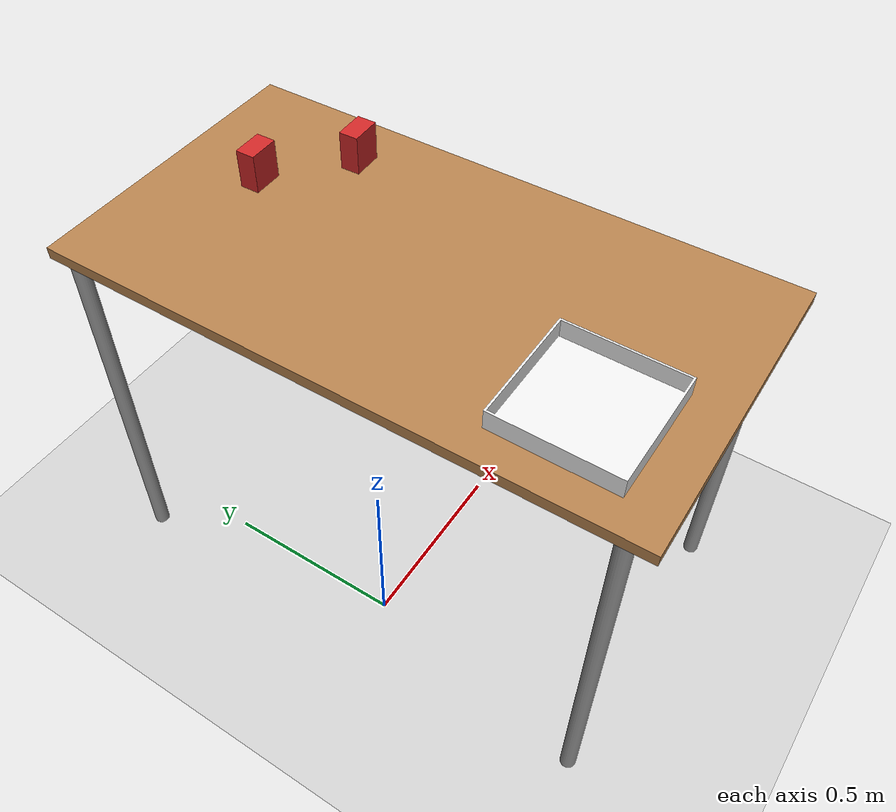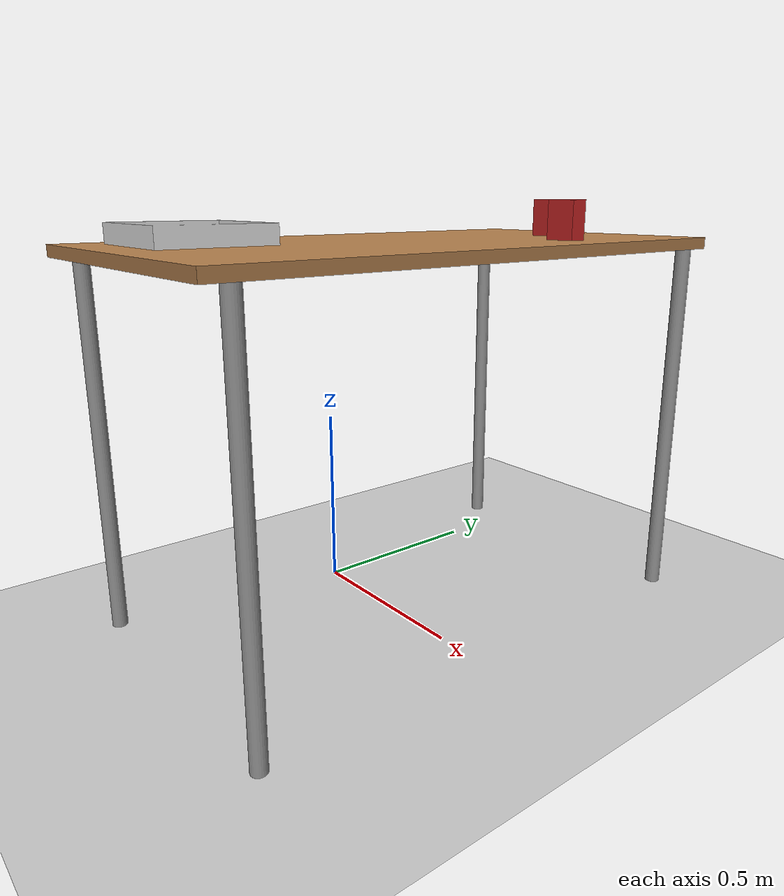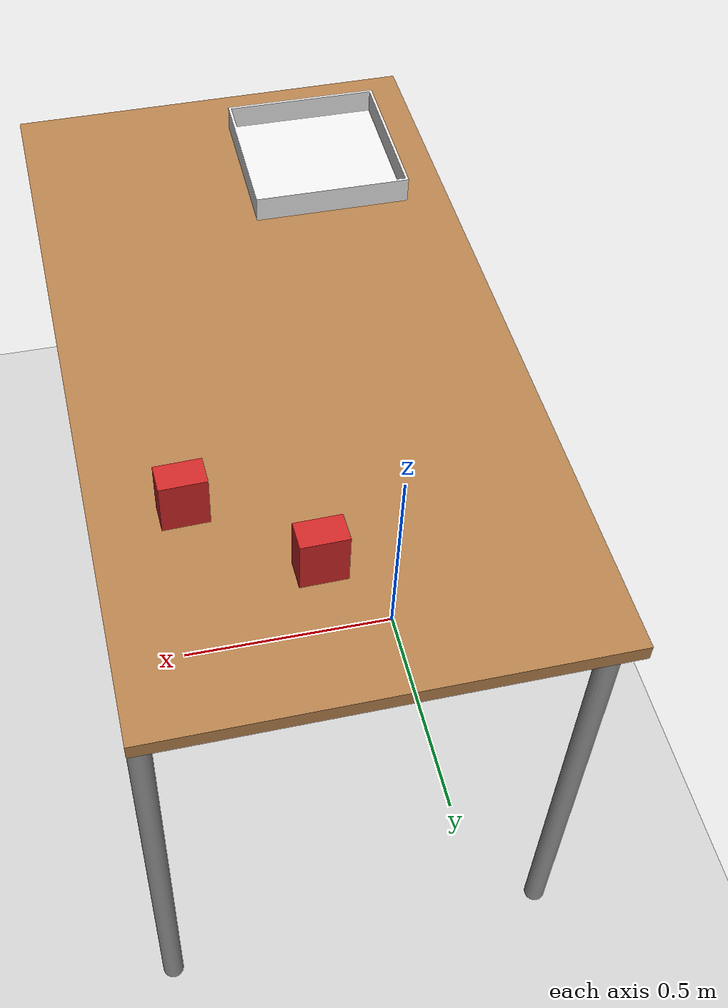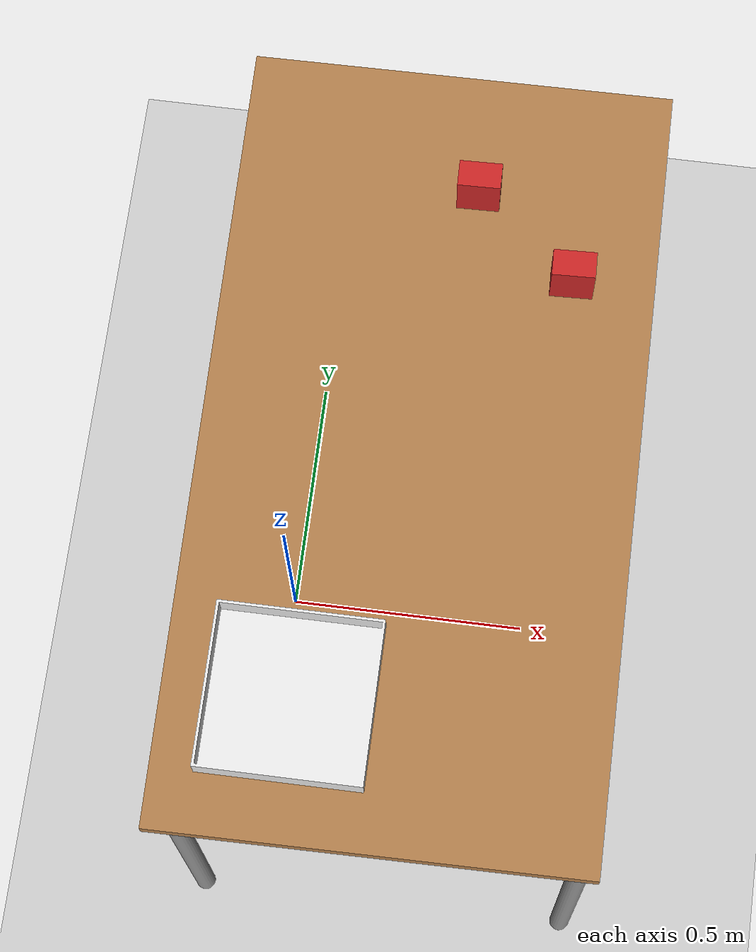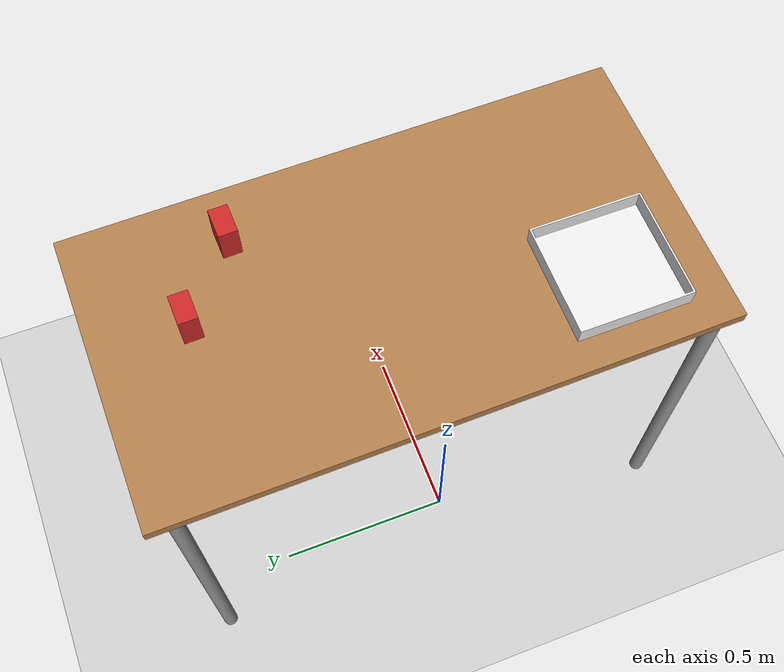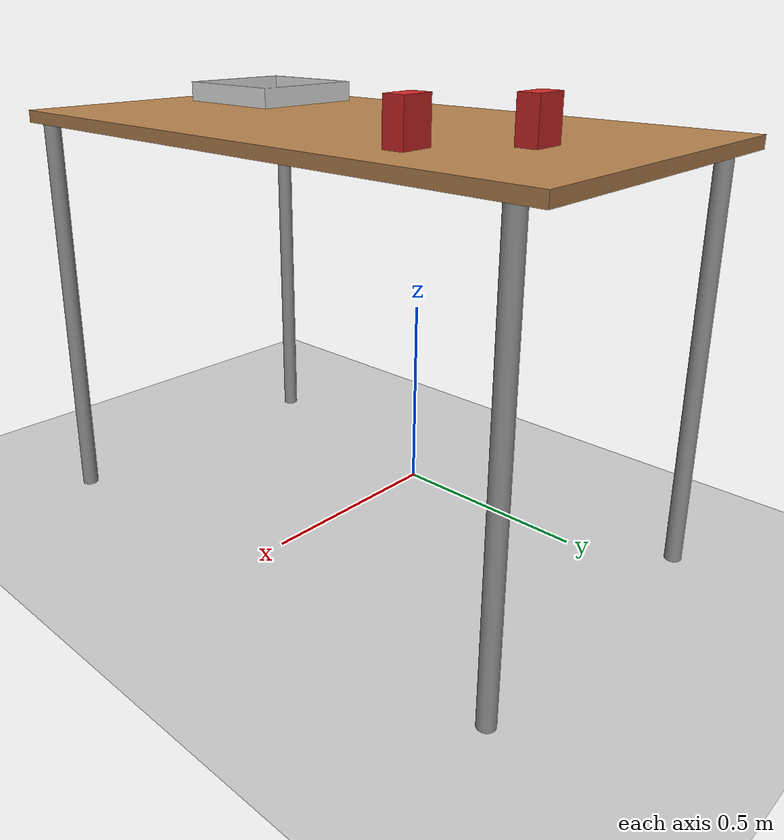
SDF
<sdf version="1.6">
 <world name="default">
  <light name="sun" type="directional">
   <cast_shadows>0</cast_shadows>
   <pose>0 0 10 0 -0 0</pose>
   <diffuse>0.8 0.8 0.8 1</diffuse>
   <specular>0.2 0.2 0.2 1</specular>
   <attenuation>
    <range>1000</range>
    <constant>0.9</constant>
    <linear>0.01</linear>
    <quadratic>0.001</quadratic>
   </attenuation>
   <direction>-0.5 0.1 -0.9</direction>
  </light>
  <model name="ground_plane">
   <static>1</static>
   <link name="link">
    <collision name="collision">
     <geometry><plane><normal>0 0 1</normal><size>100 100</size></plane></geometry>
     <surface>
      <contact><collide_bitmask>65535</collide_bitmask></contact>
      <friction><ode><mu>100</mu><mu2>50</mu2></ode></friction>
     </surface>
    </collision>
    <visual name="visual">
     <cast_shadows>0</cast_shadows>
     <geometry><plane><normal>0 0 1</normal><size>100 100</size></plane></geometry>
     <material>
      <script><uri>file://media/materials/scripts/gazebo.material</uri><name>Gazebo/Grey</name></script>
     </material>
    </visual>
   </link>
  </model>
  <gravity>0 0 -9.8</gravity>
  <magnetic_field>6e-06 2.3e-05 -4.2e-05</magnetic_field>
  <atmosphere type="adiabatic"/>
  <physics name="default_physics" default="0" type="ode">
   <max_step_size>0.001</max_step_size>
   <real_time_factor>1</real_time_factor>
   <real_time_update_rate>1000</real_time_update_rate>
  </physics>
  <scene><ambient>0.4 0.4 0.4 1</ambient><background>0.7 0.7 0.7 1</background><shadows>0</shadows></scene>
  <spherical_coordinates>
   <surface_model>EARTH_WGS84</surface_model>
   <latitude_deg>0</latitude_deg>
   <longitude_deg>0</longitude_deg>
   <elevation>0</elevation>
   <heading_deg>0</heading_deg>
  </spherical_coordinates>
  <model name="table1">
   <link name="link">
    <pose>-0.120516 -0.001132 0 0 0 -1.5614</pose>
    <visual name="visual1">
     <pose>0 0 1 0 -0 0</pose>
     <geometry><box><size>1.5 0.8 0.03</size></box></geometry>
     <material>
      <script><uri>file://media/materials/scripts/gazebo.material</uri><name>Gazebo/Wood</name></script>
      <shader type="pixel"/>
     </material>
     <cast_shadows>0</cast_shadows>
    </visual>
    <visual name="back_left_leg">
     <pose>-0.68 0.38 0.5 0 -0 0</pose>
     <geometry><cylinder><radius>0.02</radius><length>1</length></cylinder></geometry>
     <material>
      <script><uri>file://media/materials/scripts/gazebo.material</uri><name>Gazebo/Grey</name></script>
      <shader type="pixel"/>
     </material>
     <cast_shadows>0</cast_shadows>
    </visual>
    <visual name="front_right_leg">
     <pose>0.68 -0.38 0.5 0 -0 0</pose>
     <geometry><cylinder><radius>0.02</radius><length>1</length></cylinder></geometry>
     <material>
      <script><uri>file://media/materials/scripts/gazebo.material</uri><name>Gazebo/Grey</name></script>
      <shader type="pixel"/>
     </material>
     <cast_shadows>0</cast_shadows>
    </visual>
    <visual name="back_right_leg">
     <pose>-0.68 -0.38 0.5 0 -0 0</pose>
     <geometry><cylinder><radius>0.02</radius><length>1</length></cylinder></geometry>
     <material>
      <script><uri>file://media/materials/scripts/gazebo.material</uri><name>Gazebo/Grey</name></script>
      <shader type="pixel"/>
     </material>
     <cast_shadows>0</cast_shadows>
    </visual>
    <visual name="front_left_leg">
     <pose>0.68 0.38 0.5 0 -0 0</pose>
     <geometry><cylinder><radius>0.02</radius><length>1</length></cylinder></geometry>
     <material>
      <script><uri>file://media/materials/scripts/gazebo.material</uri><name>Gazebo/Grey</name></script>
      <shader type="pixel"/>
     </material>
     <cast_shadows>0</cast_shadows>
    </visual>
    <collision name="surface">
     <pose>0 0 1 0 -0 0</pose>
     <geometry><box><size>1.5 0.8 0.03</size></box></geometry>
     <surface>
      <friction>
       <ode><mu>0.6</mu><mu2>0.6</mu2><fdir1>0 0 0</fdir1><slip1>0</slip1><slip2>0</slip2></ode>
       <torsional>
        <coefficient>1</coefficient>
        <patch_radius>0</patch_radius>
        <surface_radius>0</surface_radius>
        <use_patch_radius>1</use_patch_radius>
        <ode><slip>0</slip></ode>
       </torsional>
      </friction>
      <bounce><restitution_coefficient>0</restitution_coefficient><threshold>1e+06</threshold></bounce>
      <contact>
       <collide_without_contact>0</collide_without_contact>
       <collide_without_contact_bitmask>1</collide_without_contact_bitmask>
       <collide_bitmask>1</collide_bitmask>
       <ode>
        <soft_cfm>0</soft_cfm>
        <soft_erp>0.2</soft_erp>
        <kp>1e+13</kp>
        <kd>1</kd>
        <max_vel>0.01</max_vel>
        <min_depth>0</min_depth>
       </ode>
       <bullet>
        <split_impulse>1</split_impulse>
        <split_impulse_penetration_threshold>-0.01</split_impulse_penetration_threshold>
        <soft_cfm>0</soft_cfm>
        <soft_erp>0.2</soft_erp>
        <kp>1e+13</kp>
        <kd>1</kd>
       </bullet>
      </contact>
     </surface>
    </collision>
    <collision name="front_left_leg">
     <pose>0.68 0.38 0.5 0 -0 0</pose>
     <geometry><cylinder><radius>0.02</radius><length>1</length></cylinder></geometry>
     <surface>
      <friction>
       <ode><mu>1</mu><mu2>1</mu2><fdir1>0 0 0</fdir1><slip1>0</slip1><slip2>0</slip2></ode>
       <torsional>
        <coefficient>1</coefficient>
        <patch_radius>0</patch_radius>
        <surface_radius>0</surface_radius>
        <use_patch_radius>1</use_patch_radius>
        <ode><slip>0</slip></ode>
       </torsional>
      </friction>
      <bounce><restitution_coefficient>0</restitution_coefficient><threshold>1e+06</threshold></bounce>
      <contact>
       <collide_without_contact>0</collide_without_contact>
       <collide_without_contact_bitmask>1</collide_without_contact_bitmask>
       <collide_bitmask>1</collide_bitmask>
       <ode>
        <soft_cfm>0</soft_cfm>
        <soft_erp>0.2</soft_erp>
        <kp>1e+13</kp>
        <kd>1</kd>
        <max_vel>0.01</max_vel>
        <min_depth>0</min_depth>
       </ode>
       <bullet>
        <split_impulse>1</split_impulse>
        <split_impulse_penetration_threshold>-0.01</split_impulse_penetration_threshold>
        <soft_cfm>0</soft_cfm>
        <soft_erp>0.2</soft_erp>
        <kp>1e+13</kp>
        <kd>1</kd>
       </bullet>
      </contact>
     </surface>
    </collision>
    <collision name="back_right_leg">
     <pose>-0.68 -0.38 0.5 0 -0 0</pose>
     <geometry><cylinder><radius>0.02</radius><length>1</length></cylinder></geometry>
     <surface>
      <friction>
       <ode><mu>1</mu><mu2>1</mu2><fdir1>0 0 0</fdir1><slip1>0</slip1><slip2>0</slip2></ode>
       <torsional>
        <coefficient>1</coefficient>
        <patch_radius>0</patch_radius>
        <surface_radius>0</surface_radius>
        <use_patch_radius>1</use_patch_radius>
        <ode><slip>0</slip></ode>
       </torsional>
      </friction>
      <bounce><restitution_coefficient>0</restitution_coefficient><threshold>1e+06</threshold></bounce>
      <contact>
       <collide_without_contact>0</collide_without_contact>
       <collide_without_contact_bitmask>1</collide_without_contact_bitmask>
       <collide_bitmask>1</collide_bitmask>
       <ode>
        <soft_cfm>0</soft_cfm>
        <soft_erp>0.2</soft_erp>
        <kp>1e+13</kp>
        <kd>1</kd>
        <max_vel>0.01</max_vel>
        <min_depth>0</min_depth>
       </ode>
       <bullet>
        <split_impulse>1</split_impulse>
        <split_impulse_penetration_threshold>-0.01</split_impulse_penetration_threshold>
        <soft_cfm>0</soft_cfm>
        <soft_erp>0.2</soft_erp>
        <kp>1e+13</kp>
        <kd>1</kd>
       </bullet>
      </contact>
     </surface>
    </collision>
    <collision name="front_right_leg">
     <pose>0.68 -0.38 0.5 0 -0 0</pose>
     <geometry><cylinder><radius>0.02</radius><length>1</length></cylinder></geometry>
     <surface>
      <friction>
       <ode><mu>1</mu><mu2>1</mu2><fdir1>0 0 0</fdir1><slip1>0</slip1><slip2>0</slip2></ode>
       <torsional>
        <coefficient>1</coefficient>
        <patch_radius>0</patch_radius>
        <surface_radius>0</surface_radius>
        <use_patch_radius>1</use_patch_radius>
        <ode><slip>0</slip></ode>
       </torsional>
      </friction>
      <bounce><restitution_coefficient>0</restitution_coefficient><threshold>1e+06</threshold></bounce>
      <contact>
       <collide_without_contact>0</collide_without_contact>
       <collide_without_contact_bitmask>1</collide_without_contact_bitmask>
       <collide_bitmask>1</collide_bitmask>
       <ode>
        <soft_cfm>0</soft_cfm>
        <soft_erp>0.2</soft_erp>
        <kp>1e+13</kp>
        <kd>1</kd>
        <max_vel>0.01</max_vel>
        <min_depth>0</min_depth>
       </ode>
       <bullet>
        <split_impulse>1</split_impulse>
        <split_impulse_penetration_threshold>-0.01</split_impulse_penetration_threshold>
        <soft_cfm>0</soft_cfm>
        <soft_erp>0.2</soft_erp>
        <kp>1e+13</kp>
        <kd>1</kd>
       </bullet>
      </contact>
     </surface>
    </collision>
    <collision name="back_left_leg">
     <pose>-0.68 0.38 0.5 0 -0 0</pose>
     <geometry><cylinder><radius>0.02</radius><length>1</length></cylinder></geometry>
     <surface>
      <friction>
       <ode><mu>1</mu><mu2>1</mu2><fdir1>0 0 0</fdir1><slip1>0</slip1><slip2>0</slip2></ode>
       <torsional>
        <coefficient>1</coefficient>
        <patch_radius>0</patch_radius>
        <surface_radius>0</surface_radius>
        <use_patch_radius>1</use_patch_radius>
        <ode><slip>0</slip></ode>
       </torsional>
      </friction>
      <bounce><restitution_coefficient>0</restitution_coefficient><threshold>1e+06</threshold></bounce>
      <contact>
       <collide_without_contact>0</collide_without_contact>
       <collide_without_contact_bitmask>1</collide_without_contact_bitmask>
       <collide_bitmask>1</collide_bitmask>
       <ode>
        <soft_cfm>0</soft_cfm>
        <soft_erp>0.2</soft_erp>
        <kp>1e+13</kp>
        <kd>1</kd>
        <max_vel>0.01</max_vel>
        <min_depth>0</min_depth>
       </ode>
       <bullet>
        <split_impulse>1</split_impulse>
        <split_impulse_penetration_threshold>-0.01</split_impulse_penetration_threshold>
        <soft_cfm>0</soft_cfm>
        <soft_erp>0.2</soft_erp>
        <kp>1e+13</kp>
        <kd>1</kd>
       </bullet>
      </contact>
     </surface>
    </collision>
   </link>
   <static>1</static>
   <pose>0.38963 0.048896 0 0 -0 0</pose>
  </model>
  <model name="unit_box_cuboid4">
   <link name="link">
    <inertial>
     <mass>0.5</mass>
     <inertia>
      <ixx>0.00077768</ixx>
      <ixy>0</ixy>
      <ixz>0</ixz>
      <iyy>0.00092591</iyy>
      <iyz>0</iyz>
      <izz>0.00041978</izz>
     </inertia>
    </inertial>
    <pose>0 0 1 0 -0 0</pose>
    <visual name="visual">
     <geometry><box><size>0.08 0.05 0.1</size></box></geometry>
     <material>
      <script><name>Gazebo/Red</name><uri>file://media/materials/scripts/gazebo.material</uri></script>
      <shader type="pixel"><normal_map>__default__</normal_map></shader>
      <ambient>1 0 0 0</ambient>
      <diffuse>1 0 0 1</diffuse>
      <specular>0.1 0.1 0.1 1</specular>
      <emissive>0 0 0 1</emissive>
     </material>
     <cast_shadows>0</cast_shadows>
    </visual>
    <collision name="collision">
     <geometry><box><size>0.08 0.05 0.1</size></box></geometry>
     <surface>
      <friction>
       <ode><mu>1</mu><mu2>1</mu2><fdir1>0 0 0</fdir1><slip1>0</slip1><slip2>0</slip2></ode>
       <torsional>
        <coefficient>1</coefficient>
        <patch_radius>0</patch_radius>
        <surface_radius>0</surface_radius>
        <use_patch_radius>1</use_patch_radius>
        <ode><slip>0</slip></ode>
       </torsional>
      </friction>
      <bounce><restitution_coefficient>0</restitution_coefficient><threshold>1e+06</threshold></bounce>
      <contact>
       <collide_without_contact>0</collide_without_contact>
       <collide_without_contact_bitmask>1</collide_without_contact_bitmask>
       <collide_bitmask>1</collide_bitmask>
       <ode>
        <soft_cfm>0</soft_cfm>
        <soft_erp>0.2</soft_erp>
        <kp>1e+13</kp>
        <kd>1</kd>
        <max_vel>0.01</max_vel>
        <min_depth>0</min_depth>
       </ode>
       <bullet>
        <split_impulse>1</split_impulse>
        <split_impulse_penetration_threshold>-0.01</split_impulse_penetration_threshold>
        <soft_cfm>0</soft_cfm>
        <soft_erp>0.2</soft_erp>
        <kp>1e+13</kp>
        <kd>1</kd>
       </bullet>
      </contact>
     </surface>
    </collision>
   </link>
   <static>0</static>
   <pose>0.510721 0.397034 0.065 3e-06 4e-06 0.034157</pose>
  </model>
  <model name="custom_box">
   <link name="link_0">
    <inertial>
     <mass>1</mass>
     <inertia>
      <ixx>0.166667</ixx>
      <ixy>0</ixy>
      <ixz>0</ixz>
      <iyy>0.166667</iyy>
      <iyz>0</iyz>
      <izz>0.166667</izz>
     </inertia>
    </inertial>
    <pose>-0.144404 0.176738 -2e-06 -2e-06 -6e-06 -9e-06</pose>
    <visual name="visual">
     <geometry>
      <mesh>
       <uri>/home/kh/ur5_robotiq140_ws/src/ur5_with_robotiq_gripper/icl_ur5_setup_gazebo/custom_model/custom_box.dae</uri>
       <scale>1 1 1</scale>
      </mesh>
     </geometry>
     <material>
      <lighting>1</lighting>
      <script><uri>file://media/materials/scripts/gazebo.material</uri><name>Gazebo/White</name></script>
      <shader type="pixel"><normal_map>__default__</normal_map></shader>
      <ambient>1 1 1 1</ambient>
      <diffuse>1 1 1 1</diffuse>
      <specular>0 0 0 1</specular>
      <emissive>0 0 0 1</emissive>
     </material>
     <cast_shadows>0</cast_shadows>
    </visual>
    <collision name="collision">
     <geometry>
      <mesh>
       <uri>/home/kh/ur5_robotiq140_ws/src/ur5_with_robotiq_gripper/icl_ur5_setup_gazebo/custom_model/custom_box.dae</uri>
       <scale>1 1 1</scale>
      </mesh>
     </geometry>
     <surface>
      <friction>
       <ode><mu>1</mu><mu2>1</mu2><fdir1>0 0 0</fdir1><slip1>0</slip1><slip2>0</slip2></ode>
       <torsional>
        <coefficient>1</coefficient>
        <patch_radius>0</patch_radius>
        <surface_radius>0</surface_radius>
        <use_patch_radius>1</use_patch_radius>
        <ode><slip>0</slip></ode>
       </torsional>
      </friction>
      <bounce><restitution_coefficient>0</restitution_coefficient><threshold>1e+06</threshold></bounce>
      <contact>
       <collide_without_contact>0</collide_without_contact>
       <collide_without_contact_bitmask>1</collide_without_contact_bitmask>
       <collide_bitmask>1</collide_bitmask>
       <ode>
        <soft_cfm>0</soft_cfm>
        <soft_erp>0.2</soft_erp>
        <kp>1e+13</kp>
        <kd>1</kd>
        <max_vel>0.01</max_vel>
        <min_depth>0</min_depth>
       </ode>
       <bullet>
        <split_impulse>1</split_impulse>
        <split_impulse_penetration_threshold>-0.01</split_impulse_penetration_threshold>
        <soft_cfm>0</soft_cfm>
        <soft_erp>0.2</soft_erp>
        <kp>1e+13</kp>
        <kd>1</kd>
       </bullet>
      </contact>
     </surface>
    </collision>
   </link>
   <static>0</static>
   <pose>0.098462 -0.472683 1.01501 2e-06 -8.7e-05 -6.4e-05</pose>
  </model>
  <model name="unit_box_cuboid4_clone">
   <link name="link">
    <inertial>
     <mass>0.5</mass>
     <inertia>
      <ixx>0.00077768</ixx>
      <ixy>0</ixy>
      <ixz>0</ixz>
      <iyy>0.00092591</iyy>
      <iyz>0</iyz>
      <izz>0.00041978</izz>
     </inertia>
    </inertial>
    <pose>0 0 1 0 -0 0</pose>
    <visual name="visual">
     <geometry><box><size>0.08 0.05 0.1</size></box></geometry>
     <material>
      <script><name>Gazebo/Red</name><uri>file://media/materials/scripts/gazebo.material</uri></script>
      <shader type="pixel"><normal_map>__default__</normal_map></shader>
      <ambient>1 0 0 0</ambient>
      <diffuse>1 0 0 1</diffuse>
      <specular>0.1 0.1 0.1 1</specular>
      <emissive>0 0 0 1</emissive>
     </material>
     <cast_shadows>0</cast_shadows>
    </visual>
    <collision name="collision">
     <geometry><box><size>0.08 0.05 0.1</size></box></geometry>
     <surface>
      <friction>
       <ode><mu>1</mu><mu2>1</mu2><fdir1>0 0 0</fdir1><slip1>0</slip1><slip2>0</slip2></ode>
       <torsional>
        <coefficient>1</coefficient>
        <patch_radius>0</patch_radius>
        <surface_radius>0</surface_radius>
        <use_patch_radius>1</use_patch_radius>
        <ode><slip>0</slip></ode>
       </torsional>
      </friction>
      <bounce><restitution_coefficient>0</restitution_coefficient><threshold>1e+06</threshold></bounce>
      <contact>
       <collide_without_contact>0</collide_without_contact>
       <collide_without_contact_bitmask>1</collide_without_contact_bitmask>
       <collide_bitmask>1</collide_bitmask>
       <ode>
        <soft_cfm>0</soft_cfm>
        <soft_erp>0.2</soft_erp>
        <kp>1e+13</kp>
        <kd>1</kd>
        <max_vel>0.01</max_vel>
        <min_depth>0</min_depth>
       </ode>
       <bullet>
        <split_impulse>1</split_impulse>
        <split_impulse_penetration_threshold>-0.01</split_impulse_penetration_threshold>
        <soft_cfm>0</soft_cfm>
        <soft_erp>0.2</soft_erp>
        <kp>1e+13</kp>
        <kd>1</kd>
       </bullet>
      </contact>
     </surface>
    </collision>
   </link>
   <static>0</static>
   <pose>0.31951 0.552104 0.064991 3e-06 -4e-06 0.024083</pose>
  </model>
 </world>
</sdf>
